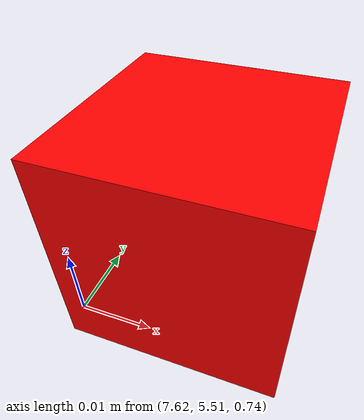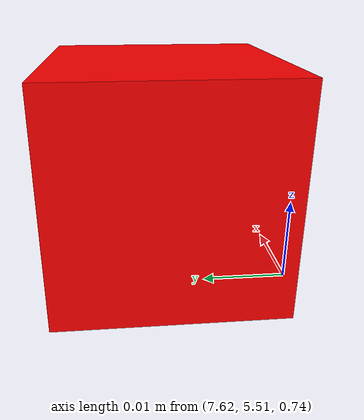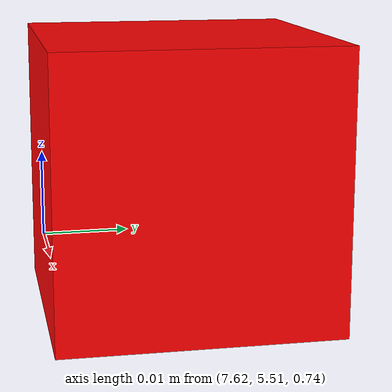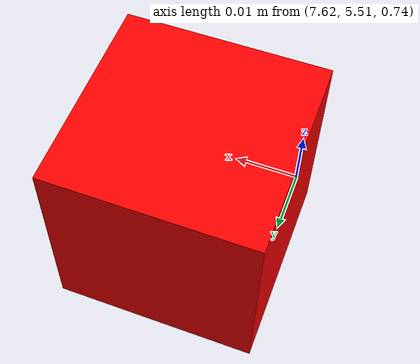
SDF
<sdf version="1.4">
 <world name="default">
  <model name="ground_plane">
   <static>1</static>
   <link name="link">
    <collision name="collision">
     <geometry><plane><normal>0 0 1</normal><size>100 100</size></plane></geometry>
     <surface><friction><ode><mu>100</mu><mu2>50</mu2></ode></friction></surface>
    </collision>
    <visual name="visual">
     <cast_shadows>0</cast_shadows>
     <geometry><plane><normal>0 0 1</normal><size>100 100</size></plane></geometry>
     <material>
      <script><uri>file://media/materials/scripts/gazebo.material</uri><name>Gazebo/Grey</name></script>
     </material>
    </visual>
    <velocity_decay><linear>0</linear><angular>0</angular></velocity_decay>
   </link>
  </model>
  <model name="red_cube_1">
   <pose>7.632928 5.523903 0.75 0 0 0</pose>
   <link name="link">
    <inertial><mass>0.1</mass></inertial>
    <gravity>0</gravity>
    <collision name="collision">
     <laser_retro>130</laser_retro>
     <geometry><box><size>0.03 0.03 0.03</size></box></geometry>
     <surface><contact><collide_bitmask>0</collide_bitmask></contact></surface>
    </collision>
    <visual name="visual">
     <geometry><box><size>0.03 0.03 0.03</size></box></geometry>
     <material><ambient>1 0 0 1</ambient><diffuse>1 0 0 1</diffuse></material>
    </visual>
   </link>
  </model>
 </world>
</sdf>
